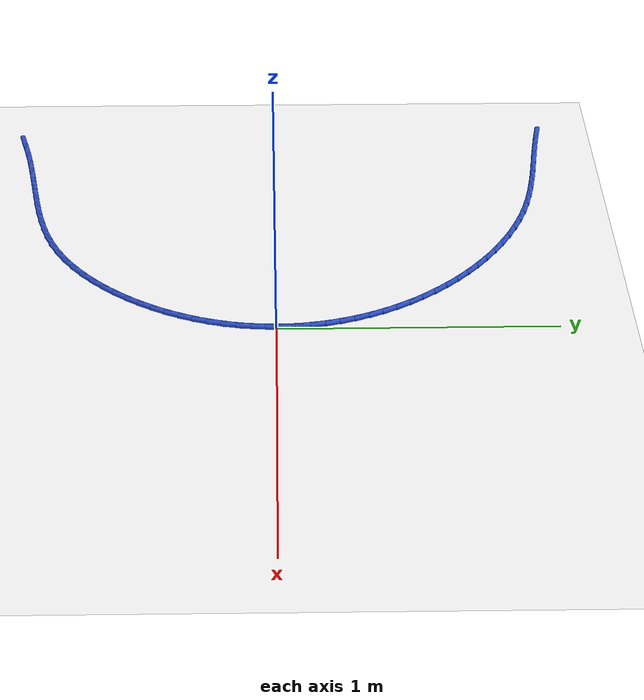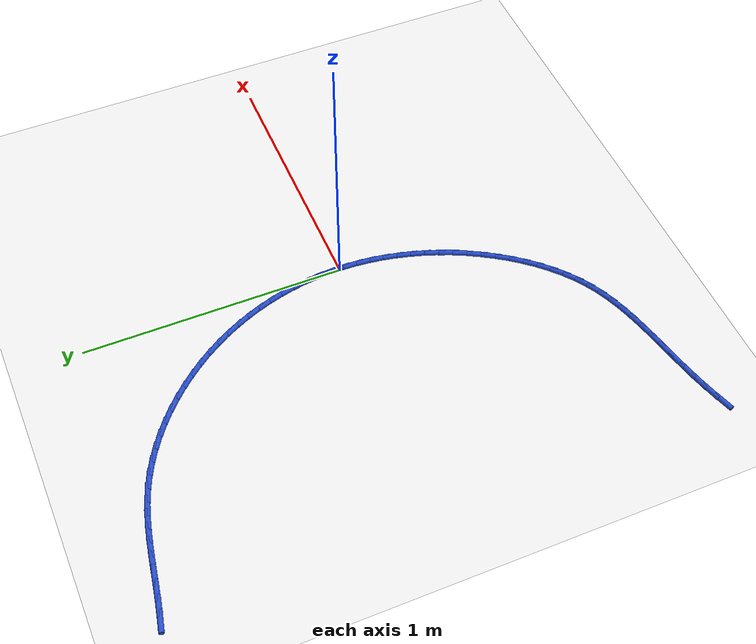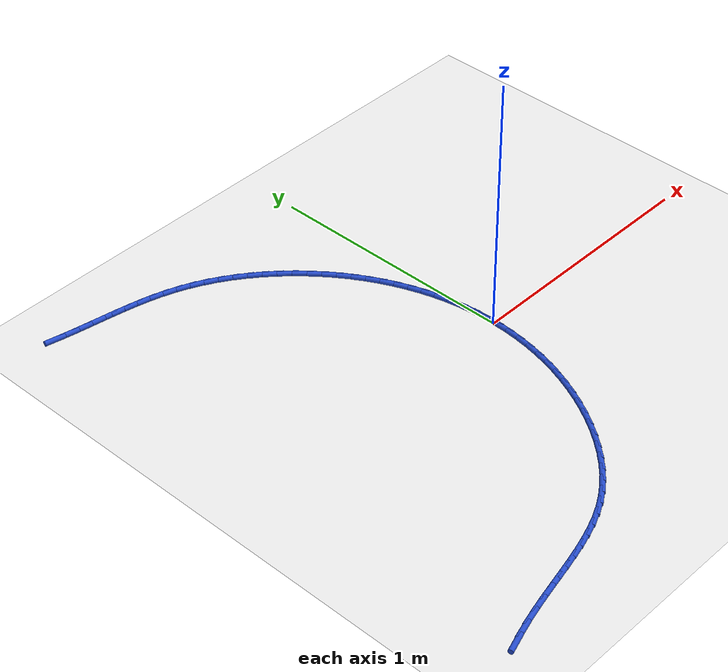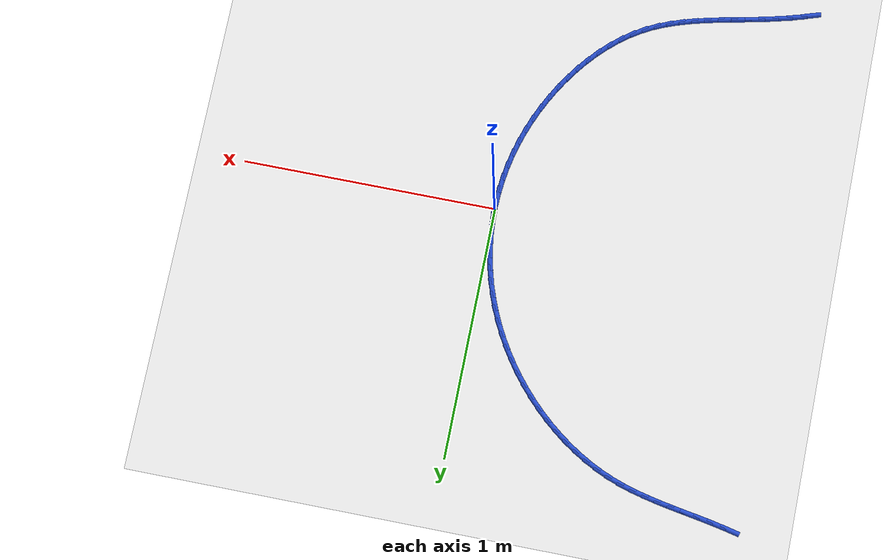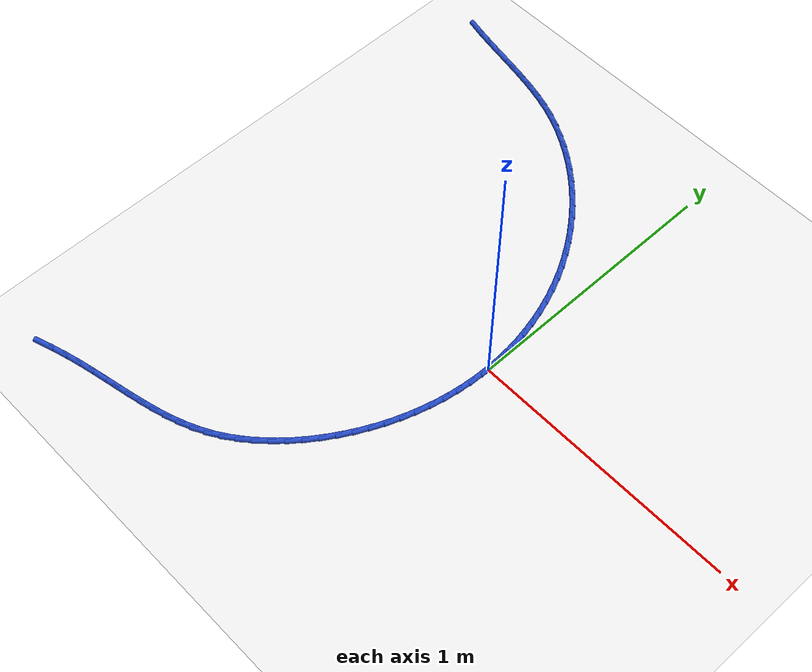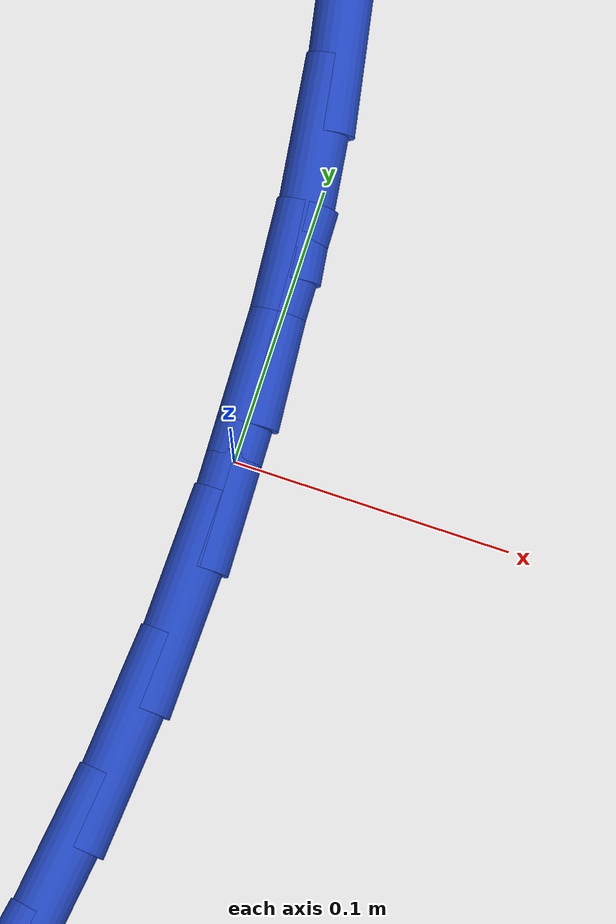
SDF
<sdf version="1.6">
 <world name="default">
  <model name="ground_plane">
   <static>1</static>
   <link name="link">
    <collision name="collision">
     <geometry><plane><normal>0 0 1</normal><size>100 100</size></plane></geometry>
     <surface><friction><ode><mu>100</mu><mu2>50</mu2></ode></friction></surface>
    </collision>
    <visual name="visual">
     <cast_shadows>0</cast_shadows>
     <geometry><plane><normal>0 0 1</normal><size>100 100</size></plane></geometry>
     <material>
      <script><uri>file://media/materials/scripts/gazebo.material</uri><name>Gazebo/WhiteGlow</name></script>
     </material>
    </visual>
   </link>
  </model>
  <model name="line">
   <link name="link_0">
    <pose>4.336808689942018e-17 -4.163336342344337e-17 0.01 0 1.57 -1.5444897631098402</pose>
    <collision name="collision">
     <geometry><cylinder><radius>0.01</radius><length>0.08</length></cylinder></geometry>
    </collision>
    <visual name="visual">
     <material>
      <script><name>Gazebo/Blue</name><uri>file://media/materials/scripts/gazebo.material</uri></script>
     </material>
     <geometry><cylinder><radius>0.01</radius><length>0.08</length></cylinder></geometry>
    </visual>
   </link>
   <link name="link_1">
    <pose>-0.0013811910339394785 0.05249155400114237 0.01 0 1.57 -1.4907757447256444</pose>
    <collision name="collision">
     <geometry><cylinder><radius>0.01</radius><length>0.08</length></cylinder></geometry>
    </collision>
    <visual name="visual">
     <material>
      <script><name>Gazebo/Blue</name><uri>file://media/materials/scripts/gazebo.material</uri></script>
     </material>
     <geometry><cylinder><radius>0.01</radius><length>0.08</length></cylinder></geometry>
    </visual>
   </link>
   <link name="link_2">
    <pose>-0.005584123901686422 0.10490254697865106 0.01 0 1.57 -1.4375625391396474</pose>
    <collision name="collision">
     <geometry><cylinder><radius>0.01</radius><length>0.08</length></cylinder></geometry>
    </collision>
    <visual name="visual">
     <material>
      <script><name>Gazebo/Blue</name><uri>file://media/materials/scripts/gazebo.material</uri></script>
     </material>
     <geometry><cylinder><radius>0.01</radius><length>0.08</length></cylinder></geometry>
    </visual>
   </link>
   <link name="link_3">
    <pose>-0.012581431312244016 0.15711043522877743 0.01 0 1.57 -1.384770800464571</pose>
    <collision name="collision">
     <geometry><cylinder><radius>0.01</radius><length>0.08</length></cylinder></geometry>
    </collision>
    <visual name="visual">
     <material>
      <script><name>Gazebo/Blue</name><uri>file://media/materials/scripts/gazebo.material</uri></script>
     </material>
     <geometry><cylinder><radius>0.01</radius><length>0.08</length></cylinder></geometry>
    </visual>
   </link>
   <link name="link_4">
    <pose>-0.022345745974615465 0.20899267504777286 0.01 0 1.57 -1.3323160520625097</pose>
    <collision name="collision">
     <geometry><cylinder><radius>0.01</radius><length>0.08</length></cylinder></geometry>
    </collision>
    <visual name="visual">
     <material>
      <script><name>Gazebo/Blue</name><uri>file://media/materials/scripts/gazebo.material</uri></script>
     </material>
     <geometry><cylinder><radius>0.01</radius><length>0.08</length></cylinder></geometry>
    </visual>
   </link>
   <link name="link_5">
    <pose>-0.03484970059780397 0.26042672273188855 0.01 0 1.57 -1.2801110938607303</pose>
    <collision name="collision">
     <geometry><cylinder><radius>0.01</radius><length>0.08</length></cylinder></geometry>
    </collision>
    <visual name="visual">
     <material>
      <script><name>Gazebo/Blue</name><uri>file://media/materials/scripts/gazebo.material</uri></script>
     </material>
     <geometry><cylinder><radius>0.01</radius><length>0.08</length></cylinder></geometry>
    </visual>
   </link>
   <link name="link_6">
    <pose>-0.05006592789081276 0.311290034577376 0.01 0 1.57 -1.2280682674339143</pose>
    <collision name="collision">
     <geometry><cylinder><radius>0.01</radius><length>0.08</length></cylinder></geometry>
    </collision>
    <visual name="visual">
     <material>
      <script><name>Gazebo/Blue</name><uri>file://media/materials/scripts/gazebo.material</uri></script>
     </material>
     <geometry><cylinder><radius>0.01</radius><length>0.08</length></cylinder></geometry>
    </visual>
   </link>
   <link name="link_7">
    <pose>-0.06796706056264504 0.36146006688048643 0.01 0 1.57 -1.1761015983769314</pose>
    <collision name="collision">
     <geometry><cylinder><radius>0.01</radius><length>0.08</length></cylinder></geometry>
    </collision>
    <visual name="visual">
     <material>
      <script><name>Gazebo/Blue</name><uri>file://media/materials/scripts/gazebo.material</uri></script>
     </material>
     <geometry><cylinder><radius>0.01</radius><length>0.08</length></cylinder></geometry>
    </visual>
   </link>
   <link name="link_8">
    <pose>-0.08852573132230401 0.41081427593747133 0.01 0 1.57 -1.1241288392653086</pose>
    <collision name="collision">
     <geometry><cylinder><radius>0.01</radius><length>0.08</length></cylinder></geometry>
    </collision>
    <visual name="visual">
     <material>
      <script><name>Gazebo/Blue</name><uri>file://media/materials/scripts/gazebo.material</uri></script>
     </material>
     <geometry><cylinder><radius>0.01</radius><length>0.08</length></cylinder></geometry>
    </visual>
   </link>
   <link name="link_9">
    <pose>-0.11171457287879288 0.4592301180445819 0.01 0 1.57 -1.072228080462935</pose>
    <collision name="collision">
     <geometry><cylinder><radius>0.01</radius><length>0.08</length></cylinder></geometry>
    </collision>
    <visual name="visual">
     <material>
      <script><name>Gazebo/Blue</name><uri>file://media/materials/scripts/gazebo.material</uri></script>
     </material>
     <geometry><cylinder><radius>0.01</radius><length>0.08</length></cylinder></geometry>
    </visual>
   </link>
   <link name="link_10">
    <pose>-0.13749466117505993 0.5065812622158051 0.01 0 1.57 -1.0211250014642226</pose>
    <collision name="collision">
     <geometry><cylinder><radius>0.01</radius><length>0.08</length></cylinder></geometry>
    </collision>
    <visual name="visual">
     <material>
      <script><name>Gazebo/Blue</name><uri>file://media/materials/scripts/gazebo.material</uri></script>
     </material>
     <geometry><cylinder><radius>0.01</radius><length>0.08</length></cylinder></geometry>
    </visual>
   </link>
   <link name="link_11">
    <pose>-0.16576166627258032 0.5527199432218709 0.01 0 1.57 -0.9708393372414129</pose>
    <collision name="collision">
     <geometry><cylinder><radius>0.01</radius><length>0.08</length></cylinder></geometry>
    </collision>
    <visual name="visual">
     <material>
      <script><name>Gazebo/Blue</name><uri>file://media/materials/scripts/gazebo.material</uri></script>
     </material>
     <geometry><cylinder><radius>0.01</radius><length>0.08</length></cylinder></geometry>
    </visual>
   </link>
   <link name="link_12">
    <pose>-0.19638827408903523 0.5974908636709866 0.01 0 1.57 -0.9210651019430824</pose>
    <collision name="collision">
     <geometry><cylinder><radius>0.01</radius><length>0.08</length></cylinder></geometry>
    </collision>
    <visual name="visual">
     <material>
      <script><name>Gazebo/Blue</name><uri>file://media/materials/scripts/gazebo.material</uri></script>
     </material>
     <geometry><cylinder><radius>0.01</radius><length>0.08</length></cylinder></geometry>
    </visual>
   </link>
   <link name="link_13">
    <pose>-0.22924714532652996 0.6407387179079324 0.01 0 1.57 -0.871496091031965</pose>
    <collision name="collision">
     <geometry><cylinder><radius>0.01</radius><length>0.08</length></cylinder></geometry>
    </collision>
    <visual name="visual">
     <material>
      <script><name>Gazebo/Blue</name><uri>file://media/materials/scripts/gazebo.material</uri></script>
     </material>
     <geometry><cylinder><radius>0.01</radius><length>0.08</length></cylinder></geometry>
    </visual>
   </link>
   <link name="link_14">
    <pose>-0.26421094068716955 0.6823082002774881 0.01 0 1.57 -0.8218260590115746</pose>
    <collision name="collision">
     <geometry><cylinder><radius>0.01</radius><length>0.08</length></cylinder></geometry>
    </collision>
    <visual name="visual">
     <material>
      <script><name>Gazebo/Blue</name><uri>file://media/materials/scripts/gazebo.material</uri></script>
     </material>
     <geometry><cylinder><radius>0.01</radius><length>0.08</length></cylinder></geometry>
    </visual>
   </link>
   <link name="link_15">
    <pose>-0.3011523208730594 0.7220440051244332 0.01 0 1.57 -0.7717483025731079</pose>
    <collision name="collision">
     <geometry><cylinder><radius>0.01</radius><length>0.08</length></cylinder></geometry>
    </collision>
    <visual name="visual">
     <material>
      <script><name>Gazebo/Blue</name><uri>file://media/materials/scripts/gazebo.material</uri></script>
     </material>
     <geometry><cylinder><radius>0.01</radius><length>0.08</length></cylinder></geometry>
    </visual>
   </link>
   <link name="link_16">
    <pose>-0.33994394658630434 0.7597908267935479 0.01 0 1.57 -0.7209553528814167</pose>
    <collision name="collision">
     <geometry><cylinder><radius>0.01</radius><length>0.08</length></cylinder></geometry>
    </collision>
    <visual name="visual">
     <material>
      <script><name>Gazebo/Blue</name><uri>file://media/materials/scripts/gazebo.material</uri></script>
     </material>
     <geometry><cylinder><radius>0.01</radius><length>0.08</length></cylinder></geometry>
    </visual>
   </link>
   <link name="link_17">
    <pose>-0.38045847852900955 0.7953933596296116 0.01 0 1.57 -0.6691391531157521</pose>
    <collision name="collision">
     <geometry><cylinder><radius>0.01</radius><length>0.08</length></cylinder></geometry>
    </collision>
    <visual name="visual">
     <material>
      <script><name>Gazebo/Blue</name><uri>file://media/materials/scripts/gazebo.material</uri></script>
     </material>
     <geometry><cylinder><radius>0.01</radius><length>0.08</length></cylinder></geometry>
    </visual>
   </link>
   <link name="link_18">
    <pose>-0.4225685774032805 0.8286962979774045 0.01 0 1.57 -0.6159921327166296</pose>
    <collision name="collision">
     <geometry><cylinder><radius>0.01</radius><length>0.08</length></cylinder></geometry>
    </collision>
    <visual name="visual">
     <material>
      <script><name>Gazebo/Blue</name><uri>file://media/materials/scripts/gazebo.material</uri></script>
     </material>
     <geometry><cylinder><radius>0.01</radius><length>0.08</length></cylinder></geometry>
    </visual>
   </link>
   <link name="link_19">
    <pose>-0.466146903911222 0.8595443361817062 0.01 0 1.57 -0.5612096452647292</pose>
    <collision name="collision">
     <geometry><cylinder><radius>0.01</radius><length>0.08</length></cylinder></geometry>
    </collision>
    <visual name="visual">
     <material>
      <script><name>Gazebo/Blue</name><uri>file://media/materials/scripts/gazebo.material</uri></script>
     </material>
     <geometry><cylinder><radius>0.01</radius><length>0.08</length></cylinder></geometry>
    </visual>
   </link>
   <link name="link_20">
    <pose>-0.5110661187549395 0.8877821685872965 0.01 0 1.57 -0.5044943005871347</pose>
    <collision name="collision">
     <geometry><cylinder><radius>0.01</radius><length>0.08</length></cylinder></geometry>
    </collision>
    <visual name="visual">
     <material>
      <script><name>Gazebo/Blue</name><uri>file://media/materials/scripts/gazebo.material</uri></script>
     </material>
     <geometry><cylinder><radius>0.01</radius><length>0.08</length></cylinder></geometry>
    </visual>
   </link>
   <link name="link_21">
    <pose>-0.5571988826365378 0.9132544895389554 0.01 0 1.57 -0.4455627711941401</pose>
    <collision name="collision">
     <geometry><cylinder><radius>0.01</radius><length>0.08</length></cylinder></geometry>
    </collision>
    <visual name="visual">
     <material>
      <script><name>Gazebo/Blue</name><uri>file://media/materials/scripts/gazebo.material</uri></script>
     </material>
     <geometry><cylinder><radius>0.01</radius><length>0.08</length></cylinder></geometry>
    </visual>
   </link>
   <link name="link_22">
    <pose>-0.6044178562581225 0.9358059933814628 0.01 0 1.57 -0.384180051276626</pose>
    <collision name="collision">
     <geometry><cylinder><radius>0.01</radius><length>0.08</length></cylinder></geometry>
    </collision>
    <visual name="visual">
     <material>
      <script><name>Gazebo/Blue</name><uri>file://media/materials/scripts/gazebo.material</uri></script>
     </material>
     <geometry><cylinder><radius>0.01</radius><length>0.08</length></cylinder></geometry>
    </visual>
   </link>
   <link name="link_23">
    <pose>-0.6525958095743899 0.9552827862916922 0.01 0 1.57 -0.32386270539957</pose>
    <collision name="collision">
     <geometry><cylinder><radius>0.01</radius><length>0.08</length></cylinder></geometry>
    </collision>
    <visual name="visual">
     <material>
      <script><name>Gazebo/Blue</name><uri>file://media/materials/scripts/gazebo.material</uri></script>
     </material>
     <geometry><cylinder><radius>0.01</radius><length>0.08</length></cylinder></geometry>
    </visual>
   </link>
   <link name="link_24">
    <pose>-0.7016216783471924 0.9717398793802972 0.01 0 1.57 -0.27259112154138915</pose>
    <collision name="collision">
     <geometry><cylinder><radius>0.01</radius><length>0.08</length></cylinder></geometry>
    </collision>
    <visual name="visual">
     <material>
      <script><name>Gazebo/Blue</name><uri>file://media/materials/scripts/gazebo.material</uri></script>
     </material>
     <geometry><cylinder><radius>0.01</radius><length>0.08</length></cylinder></geometry>
    </visual>
   </link>
   <link name="link_25">
    <pose>-0.7514175192469604 0.985660293392497 0.01 0 1.57 -0.2318175011335907</pose>
    <collision name="collision">
     <geometry><cylinder><radius>0.01</radius><length>0.08</length></cylinder></geometry>
    </collision>
    <visual name="visual">
     <material>
      <script><name>Gazebo/Blue</name><uri>file://media/materials/scripts/gazebo.material</uri></script>
     </material>
     <geometry><cylinder><radius>0.01</radius><length>0.08</length></cylinder></geometry>
    </visual>
   </link>
   <link name="link_26">
    <pose>-0.8019094465882611 0.9975794845548538 0.01 0 1.57 -0.20172970675592652</pose>
    <collision name="collision">
     <geometry><cylinder><radius>0.01</radius><length>0.08</length></cylinder></geometry>
    </collision>
    <visual name="visual">
     <material>
      <script><name>Gazebo/Blue</name><uri>file://media/materials/scripts/gazebo.material</uri></script>
     </material>
     <geometry><cylinder><radius>0.01</radius><length>0.08</length></cylinder></geometry>
    </visual>
   </link>
   <link name="link_27">
    <pose>-0.8530235746856608 1.0080329090939293 0.01 0 1.57 -0.18228715524330352</pose>
    <collision name="collision">
     <geometry><cylinder><radius>0.01</radius><length>0.08</length></cylinder></geometry>
    </collision>
    <visual name="visual">
     <material>
      <script><name>Gazebo/Blue</name><uri>file://media/materials/scripts/gazebo.material</uri></script>
     </material>
     <geometry><cylinder><radius>0.01</radius><length>0.08</length></cylinder></geometry>
    </visual>
   </link>
   <link name="link_28">
    <pose>-0.9046860178537259 1.0175560232362857 0.01 0 1.57 -0.17332582519483927</pose>
    <collision name="collision">
     <geometry><cylinder><radius>0.01</radius><length>0.08</length></cylinder></geometry>
    </collision>
    <visual name="visual">
     <material>
      <script><name>Gazebo/Blue</name><uri>file://media/materials/scripts/gazebo.material</uri></script>
     </material>
     <geometry><cylinder><radius>0.01</radius><length>0.08</length></cylinder></geometry>
    </visual>
   </link>
   <link name="link_29">
    <pose>-0.956822890407023 1.0266842832084844 0.01 0 1.57 -0.17462703411937122</pose>
    <collision name="collision">
     <geometry><cylinder><radius>0.01</radius><length>0.08</length></cylinder></geometry>
    </collision>
    <visual name="visual">
     <material>
      <script><name>Gazebo/Blue</name><uri>file://media/materials/scripts/gazebo.material</uri></script>
     </material>
     <geometry><cylinder><radius>0.01</radius><length>0.08</length></cylinder></geometry>
    </visual>
   </link>
   <link name="link_30">
    <pose>-1.0093603066601189 1.0359531452370878 0.01 0 1.57 -0.1859492132141036</pose>
    <collision name="collision">
     <geometry><cylinder><radius>0.01</radius><length>0.08</length></cylinder></geometry>
    </collision>
    <visual name="visual">
     <material>
      <script><name>Gazebo/Blue</name><uri>file://media/materials/scripts/gazebo.material</uri></script>
     </material>
     <geometry><cylinder><radius>0.01</radius><length>0.08</length></cylinder></geometry>
    </visual>
   </link>
   <link name="link_31">
    <pose>-1.0622243809275804 1.0458980655486583 0.01 0 1.57 -0.2064347111161968</pose>
    <collision name="collision">
     <geometry><cylinder><radius>0.01</radius><length>0.08</length></cylinder></geometry>
    </collision>
    <visual name="visual">
     <material>
      <script><name>Gazebo/Blue</name><uri>file://media/materials/scripts/gazebo.material</uri></script>
     </material>
     <geometry><cylinder><radius>0.01</radius><length>0.08</length></cylinder></geometry>
    </visual>
   </link>
   <link name="link_32">
    <pose>-1.1153383633479965 1.0570210895174137 0.01 0 1.57 -0.22168530332339914</pose>
    <collision name="collision">
     <geometry><cylinder><radius>0.01</radius><length>0.08</length></cylinder></geometry>
    </collision>
    <visual name="visual">
     <material>
      <script><name>Gazebo/Blue</name><uri>file://media/materials/scripts/gazebo.material</uri></script>
     </material>
     <geometry><cylinder><radius>0.01</radius><length>0.08</length></cylinder></geometry>
    </visual>
   </link>
   <link name="link_99">
    <pose>-1.0808649845760279 -1.0142309496518518 0.01 0 1.57 0.3065272305041646</pose>
    <collision name="collision">
     <geometry><cylinder><radius>0.01</radius><length>0.08</length></cylinder></geometry>
    </collision>
    <visual name="visual">
     <material>
      <script><name>Gazebo/Blue</name><uri>file://media/materials/scripts/gazebo.material</uri></script>
     </material>
     <geometry><cylinder><radius>0.01</radius><length>0.08</length></cylinder></geometry>
    </visual>
   </link>
   <link name="link_100">
    <pose>-1.0259783740359845 -0.9968591927782507 0.01 0 1.57 0.2745855437600415</pose>
    <collision name="collision">
     <geometry><cylinder><radius>0.01</radius><length>0.08</length></cylinder></geometry>
    </collision>
    <visual name="visual">
     <material>
      <script><name>Gazebo/Blue</name><uri>file://media/materials/scripts/gazebo.material</uri></script>
     </material>
     <geometry><cylinder><radius>0.01</radius><length>0.08</length></cylinder></geometry>
    </visual>
   </link>
   <link name="link_101">
    <pose>-0.9713393214939885 -0.9814673051538064 0.01 0 1.57 0.24376768095230106</pose>
    <collision name="collision">
     <geometry><cylinder><radius>0.01</radius><length>0.08</length></cylinder></geometry>
    </collision>
    <visual name="visual">
     <material>
      <script><name>Gazebo/Blue</name><uri>file://media/materials/scripts/gazebo.material</uri></script>
     </material>
     <geometry><cylinder><radius>0.01</radius><length>0.08</length></cylinder></geometry>
    </visual>
   </link>
   <link name="link_102">
    <pose>-0.9171138108958187 -0.9679806766817688 0.01 0 1.57 0.22214434423670412</pose>
    <collision name="collision">
     <geometry><cylinder><radius>0.01</radius><length>0.08</length></cylinder></geometry>
    </collision>
    <visual name="visual">
     <material>
      <script><name>Gazebo/Blue</name><uri>file://media/materials/scripts/gazebo.material</uri></script>
     </material>
     <geometry><cylinder><radius>0.01</radius><length>0.08</length></cylinder></geometry>
    </visual>
   </link>
   <link name="link_103">
    <pose>-0.8634127847860994 -0.9558511142853079 0.01 0 1.57 0.21021822359706868</pose>
    <collision name="collision">
     <geometry><cylinder><radius>0.01</radius><length>0.08</length></cylinder></geometry>
    </collision>
    <visual name="visual">
     <material>
      <script><name>Gazebo/Blue</name><uri>file://media/materials/scripts/gazebo.material</uri></script>
     </material>
     <geometry><cylinder><radius>0.01</radius><length>0.08</length></cylinder></geometry>
    </visual>
   </link>
   <link name="link_104">
    <pose>-0.8103469534400755 -0.9445284264133216 0.01 0 1.57 0.20843463302767112</pose>
    <collision name="collision">
     <geometry><cylinder><radius>0.01</radius><length>0.08</length></cylinder></geometry>
    </collision>
    <visual name="visual">
     <material>
      <script><name>Gazebo/Blue</name><uri>file://media/materials/scripts/gazebo.material</uri></script>
     </material>
     <geometry><cylinder><radius>0.01</radius><length>0.08</length></cylinder></geometry>
    </visual>
   </link>
   <link name="link_105">
    <pose>-0.7580270271329917 -0.9334624215147076 0.01 0 1.57 0.2172468093767773</pose>
    <collision name="collision">
     <geometry><cylinder><radius>0.01</radius><length>0.08</length></cylinder></geometry>
    </collision>
    <visual name="visual">
     <material>
      <script><name>Gazebo/Blue</name><uri>file://media/materials/scripts/gazebo.material</uri></script>
     </material>
     <geometry><cylinder><radius>0.01</radius><length>0.08</length></cylinder></geometry>
    </visual>
   </link>
   <link name="link_106">
    <pose>-0.7065637161400936 -0.922102908038364 0.01 0 1.57 0.23712059929048082</pose>
    <collision name="collision">
     <geometry><cylinder><radius>0.01</radius><length>0.08</length></cylinder></geometry>
    </collision>
    <visual name="visual">
     <material>
      <script><name>Gazebo/Blue</name><uri>file://media/materials/scripts/gazebo.material</uri></script>
     </material>
     <geometry><cylinder><radius>0.01</radius><length>0.08</length></cylinder></geometry>
    </visual>
   </link>
   <link name="link_107">
    <pose>-0.6560677307366264 -0.9098996944331887 0.01 0 1.57 0.2685010782083647</pose>
    <collision name="collision">
     <geometry><cylinder><radius>0.01</radius><length>0.08</length></cylinder></geometry>
    </collision>
    <visual name="visual">
     <material>
      <script><name>Gazebo/Blue</name><uri>file://media/materials/scripts/gazebo.material</uri></script>
     </material>
     <geometry><cylinder><radius>0.01</radius><length>0.08</length></cylinder></geometry>
    </visual>
   </link>
   <link name="link_108">
    <pose>-0.6066497811978362 -0.8963025891480801 0.01 0 1.57 0.3117299830556299</pose>
    <collision name="collision">
     <geometry><cylinder><radius>0.01</radius><length>0.08</length></cylinder></geometry>
    </collision>
    <visual name="visual">
     <material>
      <script><name>Gazebo/Blue</name><uri>file://media/materials/scripts/gazebo.material</uri></script>
     </material>
     <geometry><cylinder><radius>0.01</radius><length>0.08</length></cylinder></geometry>
    </visual>
   </link>
   <link name="link_109">
    <pose>-0.5584205777989681 -0.8807614006319356 0.01 0 1.57 0.36690577487326337</pose>
    <collision name="collision">
     <geometry><cylinder><radius>0.01</radius><length>0.08</length></cylinder></geometry>
    </collision>
    <visual name="visual">
     <material>
      <script><name>Gazebo/Blue</name><uri>file://media/materials/scripts/gazebo.material</uri></script>
     </material>
     <geometry><cylinder><radius>0.01</radius><length>0.08</length></cylinder></geometry>
    </visual>
   </link>
   <link name="link_110">
    <pose>-0.5114908308152666 -0.8627259373336534 0.01 0 1.57 0.43369092672771853</pose>
    <collision name="collision">
     <geometry><cylinder><radius>0.01</radius><length>0.08</length></cylinder></geometry>
    </collision>
    <visual name="visual">
     <material>
      <script><name>Gazebo/Blue</name><uri>file://media/materials/scripts/gazebo.material</uri></script>
     </material>
     <geometry><cylinder><radius>0.01</radius><length>0.08</length></cylinder></geometry>
    </visual>
   </link>
   <link name="link_111">
    <pose>-0.4659712505219785 -0.8416460077021313 0.01 0 1.57 0.5110678620509685</pose>
    <collision name="collision">
     <geometry><cylinder><radius>0.01</radius><length>0.08</length></cylinder></geometry>
    </collision>
    <visual name="visual">
     <material>
      <script><name>Gazebo/Blue</name><uri>file://media/materials/scripts/gazebo.material</uri></script>
     </material>
     <geometry><cylinder><radius>0.01</radius><length>0.08</length></cylinder></geometry>
    </visual>
   </link>
   <link name="link_112">
    <pose>-0.42197253243018856 -0.8169732191761334 0.01 0 1.57 0.5928680104123562</pose>
    <collision name="collision">
     <geometry><cylinder><radius>0.01</radius><length>0.08</length></cylinder></geometry>
    </collision>
    <visual name="visual">
     <material>
      <script><name>Gazebo/Blue</name><uri>file://media/materials/scripts/gazebo.material</uri></script>
     </material>
     <geometry><cylinder><radius>0.01</radius><length>0.08</length></cylinder></geometry>
    </visual>
   </link>
   <link name="link_113">
    <pose>-0.37960316390543725 -0.7884282382886032 0.01 0 1.57 0.6692383418211154</pose>
    <collision name="collision">
     <geometry><cylinder><radius>0.01</radius><length>0.08</length></cylinder></geometry>
    </collision>
    <visual name="visual">
     <material>
      <script><name>Gazebo/Blue</name><uri>file://media/materials/scripts/gazebo.material</uri></script>
     </material>
     <geometry><cylinder><radius>0.01</radius><length>0.08</length></cylinder></geometry>
    </visual>
   </link>
   <link name="link_114">
    <pose>-0.33896709586322266 -0.7562844909418489 0.01 0 1.57 0.7396322983303751</pose>
    <collision name="collision">
     <geometry><cylinder><radius>0.01</radius><length>0.08</length></cylinder></geometry>
    </collision>
    <visual name="visual">
     <material>
      <script><name>Gazebo/Blue</name><uri>file://media/materials/scripts/gazebo.material</uri></script>
     </material>
     <geometry><cylinder><radius>0.01</radius><length>0.08</length></cylinder></geometry>
    </visual>
   </link>
   <link name="link_115">
    <pose>-0.300167721659516 -0.7208833407977847 0.01 0 1.57 0.8047887974823885</pose>
    <collision name="collision">
     <geometry><cylinder><radius>0.01</radius><length>0.08</length></cylinder></geometry>
    </collision>
    <visual name="visual">
     <material>
      <script><name>Gazebo/Blue</name><uri>file://media/materials/scripts/gazebo.material</uri></script>
     </material>
     <geometry><cylinder><radius>0.01</radius><length>0.08</length></cylinder></geometry>
    </visual>
   </link>
   <link name="link_116">
    <pose>-0.2633084346502898 -0.6825661515183263 0.01 0 1.57 0.8654833484574644</pose>
    <collision name="collision">
     <geometry><cylinder><radius>0.01</radius><length>0.08</length></cylinder></geometry>
    </collision>
    <visual name="visual">
     <material>
      <script><name>Gazebo/Blue</name><uri>file://media/materials/scripts/gazebo.material</uri></script>
     </material>
     <geometry><cylinder><radius>0.01</radius><length>0.08</length></cylinder></geometry>
    </visual>
   </link>
   <link name="link_117">
    <pose>-0.2284926281915149 -0.6416742867653881 0.01 0 1.57 0.9224887321018826</pose>
    <collision name="collision">
     <geometry><cylinder><radius>0.01</radius><length>0.08</length></cylinder></geometry>
    </collision>
    <visual name="visual">
     <material>
      <script><name>Gazebo/Blue</name><uri>file://media/materials/scripts/gazebo.material</uri></script>
     </material>
     <geometry><cylinder><radius>0.01</radius><length>0.08</length></cylinder></geometry>
    </visual>
   </link>
   <link name="link_118">
    <pose>-0.1958236956391625 -0.5985491102008842 0.01 0 1.57 0.9765568623629125</pose>
    <collision name="collision">
     <geometry><cylinder><radius>0.01</radius><length>0.08</length></cylinder></geometry>
    </collision>
    <visual name="visual">
     <material>
      <script><name>Gazebo/Blue</name><uri>file://media/materials/scripts/gazebo.material</uri></script>
     </material>
     <geometry><cylinder><radius>0.01</radius><length>0.08</length></cylinder></geometry>
    </visual>
   </link>
   <link name="link_119">
    <pose>-0.16540503034920492 -0.5535319854867299 0.01 0 1.57 1.0284152204578243</pose>
    <collision name="collision">
     <geometry><cylinder><radius>0.01</radius><length>0.08</length></cylinder></geometry>
    </collision>
    <visual name="visual">
     <material>
      <script><name>Gazebo/Blue</name><uri>file://media/materials/scripts/gazebo.material</uri></script>
     </material>
     <geometry><cylinder><radius>0.01</radius><length>0.08</length></cylinder></geometry>
    </visual>
   </link>
   <link name="link_120">
    <pose>-0.13734002567761333 -0.5069642762848399 0.01 0 1.57 1.0787732944367219</pose>
    <collision name="collision">
     <geometry><cylinder><radius>0.01</radius><length>0.08</length></cylinder></geometry>
    </collision>
    <visual name="visual">
     <material>
      <script><name>Gazebo/Blue</name><uri>file://media/materials/scripts/gazebo.material</uri></script>
     </material>
     <geometry><cylinder><radius>0.01</radius><length>0.08</length></cylinder></geometry>
    </visual>
   </link>
   <link name="link_121">
    <pose>-0.11173205721820553 -0.45918728409446 0.01 0 1.57 1.1285134844728781</pose>
    <collision name="collision">
     <geometry><cylinder><radius>0.01</radius><length>0.08</length></cylinder></geometry>
    </collision>
    <visual name="visual">
     <material>
      <script><name>Gazebo/Blue</name><uri>file://media/materials/scripts/gazebo.material</uri></script>
     </material>
     <geometry><cylinder><radius>0.01</radius><length>0.08</length></cylinder></geometry>
    </visual>
   </link>
   <link name="link_122">
    <pose>-0.0886683102588322 -0.41048564878222 0.01 0 1.57 1.178551697271563</pose>
    <collision name="collision">
     <geometry><cylinder><radius>0.01</radius><length>0.08</length></cylinder></geometry>
    </collision>
    <visual name="visual">
     <material>
      <script><name>Gazebo/Blue</name><uri>file://media/materials/scripts/gazebo.material</uri></script>
     </material>
     <geometry><cylinder><radius>0.01</radius><length>0.08</length></cylinder></geometry>
    </visual>
   </link>
   <link name="link_123">
    <pose>-0.0681898974016433 -0.3609827684447599 0.01 0 1.57 1.2290404418137892</pose>
    <collision name="collision">
     <geometry><cylinder><radius>0.01</radius><length>0.08</length></cylinder></geometry>
    </collision>
    <visual name="visual">
     <material>
      <script><name>Gazebo/Blue</name><uri>file://media/materials/scripts/gazebo.material</uri></script>
     </material>
     <geometry><cylinder><radius>0.01</radius><length>0.08</length></cylinder></geometry>
    </visual>
   </link>
   <link name="link_124">
    <pose>-0.0503297905244669 -0.3107735508752194 0.01 0 1.57 1.2800141956258342</pose>
    <collision name="collision">
     <geometry><cylinder><radius>0.01</radius><length>0.08</length></cylinder></geometry>
    </collision>
    <visual name="visual">
     <material>
      <script><name>Gazebo/Blue</name><uri>file://media/materials/scripts/gazebo.material</uri></script>
     </material>
     <geometry><cylinder><radius>0.01</radius><length>0.08</length></cylinder></geometry>
    </visual>
   </link>
   <link name="link_125">
    <pose>-0.035120961505130076 -0.25995290386673575 0.01 0 1.57 1.3315037134526244</pose>
    <collision name="collision">
     <geometry><cylinder><radius>0.01</radius><length>0.08</length></cylinder></geometry>
    </collision>
    <visual name="visual">
     <material>
      <script><name>Gazebo/Blue</name><uri>file://media/materials/scripts/gazebo.material</uri></script>
     </material>
     <geometry><cylinder><radius>0.01</radius><length>0.08</length></cylinder></geometry>
    </visual>
   </link>
   <link name="link_126">
    <pose>-0.022596382221460105 -0.20861573521244614 0.01 0 1.57 1.3835343786715204</pose>
    <collision name="collision">
     <geometry><cylinder><radius>0.01</radius><length>0.08</length></cylinder></geometry>
    </collision>
    <visual name="visual">
     <material>
      <script><name>Gazebo/Blue</name><uri>file://media/materials/scripts/gazebo.material</uri></script>
     </material>
     <geometry><cylinder><radius>0.01</radius><length>0.08</length></cylinder></geometry>
    </visual>
   </link>
   <link name="link_127">
    <pose>-0.012789024551284792 -0.1568569527054902 0.01 0 1.57 1.4361244901092236</pose>
    <collision name="collision">
     <geometry><cylinder><radius>0.01</radius><length>0.08</length></cylinder></geometry>
    </collision>
    <visual name="visual">
     <material>
      <script><name>Gazebo/Blue</name><uri>file://media/materials/scripts/gazebo.material</uri></script>
     </material>
     <geometry><cylinder><radius>0.01</radius><length>0.08</length></cylinder></geometry>
    </visual>
   </link>
   <link name="link_128">
    <pose>-0.005731860372431381 -0.10477146413900523 0.01 0 1.57 1.4892835246310956</pose>
    <collision name="collision">
     <geometry><cylinder><radius>0.01</radius><length>0.08</length></cylinder></geometry>
    </collision>
    <visual name="visual">
     <material>
      <script><name>Gazebo/Blue</name><uri>file://media/materials/scripts/gazebo.material</uri></script>
     </material>
     <geometry><cylinder><radius>0.01</radius><length>0.08</length></cylinder></geometry>
    </visual>
   </link>
   <link name="link_129">
    <pose>-0.0014578615627272931 -0.05245417730612922 0.01 0 1.57 1.5430104299484129</pose>
    <collision name="collision">
     <geometry><cylinder><radius>0.01</radius><length>0.08</length></cylinder></geometry>
    </collision>
    <visual name="visual">
     <material>
      <script><name>Gazebo/Blue</name><uri>file://media/materials/scripts/gazebo.material</uri></script>
     </material>
     <geometry><cylinder><radius>0.01</radius><length>0.08</length></cylinder></geometry>
    </visual>
   </link>
   <link name="link_130">
    <pose>2.7755575615628914e-17 -1.6653345369377348e-16 0.01 0 1.57 -1.5443006367242207</pose>
    <collision name="collision">
     <geometry><cylinder><radius>0.01</radius><length>0.08</length></cylinder></geometry>
    </collision>
    <visual name="visual">
     <material>
      <script><name>Gazebo/Blue</name><uri>file://media/materials/scripts/gazebo.material</uri></script>
     </material>
     <geometry><cylinder><radius>0.01</radius><length>0.08</length></cylinder></geometry>
    </visual>
   </link>
   <link name="link_131">
    <pose>-0.001391247562076845 0.05249615998624381 0.01 0 1.57 -1.5443006367242202</pose>
    <collision name="collision">
     <geometry><cylinder><radius>0.01</radius><length>0.08</length></cylinder></geometry>
    </collision>
    <visual name="visual">
     <material>
      <script><name>Gazebo/Blue</name><uri>file://media/materials/scripts/gazebo.material</uri></script>
     </material>
     <geometry><cylinder><radius>0.01</radius><length>0.08</length></cylinder></geometry>
    </visual>
   </link>
  </model>
 </world>
</sdf>
